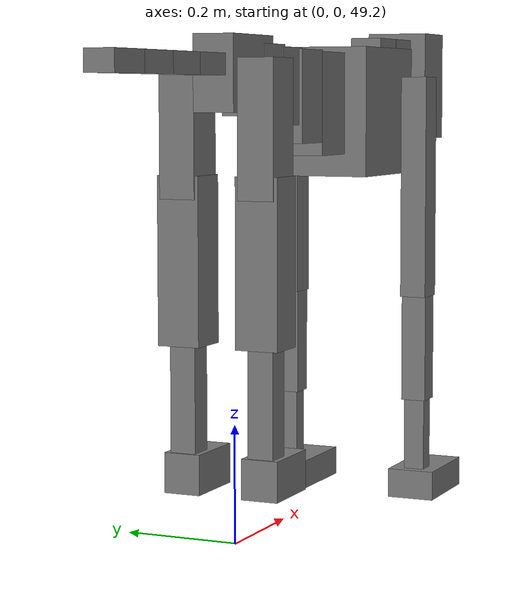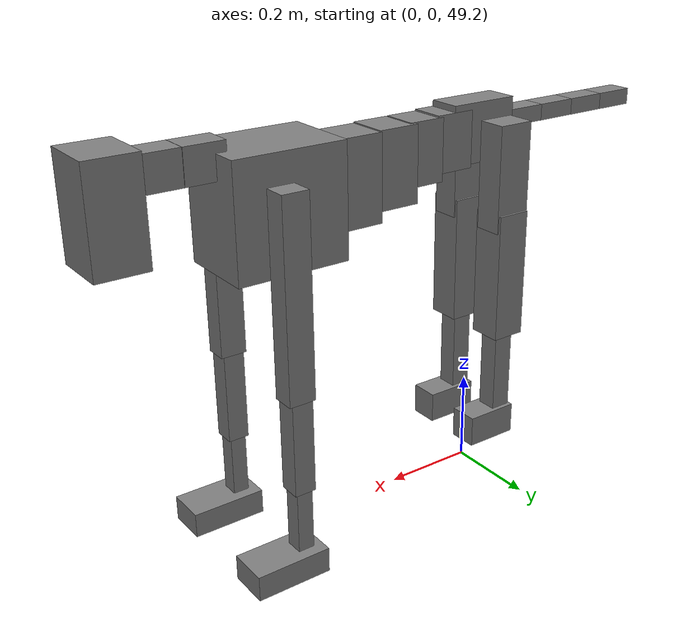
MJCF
<mujoco model="dog">

    <default>
        <joint armature="0.02" stiffness="1" damping="0.2" limited="true"/>
        <geom condim="3" friction="1 0.05 0.05" margin="0.01"/>
        <motor ctrllimited="true" ctrlrange="-1.0 1.0" forcelimited="true" gear="50"/>
    </default>

    <compiler inertiafromgeom="true" angle="radian"/>

    <option timestep="0.016" iterations="50" tolerance="1e-10" solver="Newton" jacobian="dense" cone="pyramidal"/>

    <size nconmax="20000" njmax="60000" nstack="5000000"/>
    <visual>
        <map force="0.1" zfar="30"/>
        <rgba haze="0.15 0.25 0.35 1"/>
        <quality shadowsize="2048"/>
        <global offwidth="800" offheight="800"/>
    </visual>

    <asset>
        <texture type="skybox" builtin="gradient" rgb1="0.3 0.5 0.7" rgb2="0 0 0" width="512" height="512"/>
        <texture name="texplane" type="2d" builtin="checker" rgb1=".2 .3 .4" rgb2=".1 0.15 0.2" width="512" height="512"
                 mark="cross" markrgb=".8 .8 .8"/>
        <texture name="texgeom" type="cube" builtin="flat" mark="cross" width="127" height="1278" rgb1="0.8 0.6 0.4"
                 rgb2="0.8 0.6 0.4" markrgb="1 1 1" random="0.01"/>

        <material name="matplane" reflectance="0.3" texture="texplane" texrepeat="1 1" texuniform="true"/>
        <material name="matgeom" texture="texgeom" texuniform="true" rgba="0.8 0.6 .4 1"/>
    </asset>

    <worldbody>
        <geom name="floor" pos="0 0 0" size="0 0 .25" type="plane" material="matplane" condim="3"/>

        <light directional="false" diffuse=".2 .2 .2" specular="0 0 0" pos="0 0 5" dir="0 0 -1" castshadow="false"/>
        <light mode="targetbodycom" target="torso" directional="false" diffuse=".8 .8 .8" specular="0.3 0.3 0.3"
               pos="0 0 4.0" dir="0 0 -1"/>

        <body name="root" pos="0 0 50">
            <freejoint name="root_1"/>
            <geom type="box" pos="0 0 -0.02" size="0.0774  0.0358  0.063" density="2030"/>

            <body name="spine1" pos="0.054 0 0">
                <joint name="spine1_y" axis="0 1 0" range="0 0.7" limited="true"/>
                <geom type="box" pos="0.02375 0 -0.03" size="0.04375  0.0375  0.05985" density="2030"/>

                <body name="spine2" pos="0.0612 0 0">
                    <joint name="spine2_y" axis="0 1 0" range="-0.15 0.15" limited="true"/>
                    <geom type="box" pos="0.03555  0  -0.04" size="0.04055  0.039  0.06615" density="2030"/>

                    <body name="spine3" pos="0.0730 0 0">
                        <joint name="spine3_y" axis="0 1 0" range="-0.15 0.15" limited="true"/>
                        <geom type="box" pos="0.03555  0  -0.057" size="0.04555  0.0445  0.081" density="2030"/>

                        <body name="spine4" pos="0.0780 0 0">
                            <joint name="spine4_y" axis="0 1 0" range="-0.15 0.15" limited="true"/>
                            <geom type="box" pos="0.05265  0  -0.07" size="0.05265  0.045  0.09135" density="2030"/>

                            <body name="torso" pos="0.1082 0 0">
                                <joint name="torso_y" axis="0 1 0" range="-0.15 0.15" limited="true"/>
                                <geom type="box" pos="0.11925  0  -0.085" size="0.11925  0.085  0.11745"
                                      density="2030"/>

                                <body name="neck1" pos="0.2160  0   0.0180">
                                    <joint name="neck1_y" axis="0 1 0" range="-1.2  -1" limited="true"/>
                                    <geom type="box" pos="0.0423  0  0" size="0.0423  0.03  0.036" density="2325"/>

                                    <body name="neck2" pos="0.0853  0  0">
                                        <joint name="neck2_y" axis="0 1 0" range="0.1  0" limited="true"/>
                                        <geom type="box" pos="0.0423  0  0" size="0.0423  0.03  0.036" density="2325"/>

                                        <body name="head" pos="0.0853  0  0">
                                            <joint name="head_y" axis="0 1 0" range="-0.3  -0.2" limited="true"/>
                                            <geom type="box" pos="0.0531  0  -0.055" size="0.0531  0.06  0.1044"
                                                  density="4030"/>

                                        </body>
                                    </body>
                                </body>

                                <body name="front_shoulder" pos="0.156  0   -0.0480">
                                    <joint name="front_shoulder_y" axis="0 1 0" range="-1 1.5" limited="true"/>
                                    <geom type="box" pos="0 0.13 -0.1783" size="0.0284  0.0243  0.2050" density="1158"/>
                                    <geom type="box" pos="0 -0.13 -0.1783" size="0.0284  0.0243  0.2050"
                                          density="1158"/>

                                    <body name="front_elbow" pos="0  0  -0.3567">
                                        <joint name="front_elbow_y" axis="0 1 0" range="-2 0" limited="true"/>
                                        <geom type="box" pos="0 0.13 -0.1112" size="0.0227  0.0232  0.1112"
                                              density="1081"/>
                                        <geom type="box" pos="0 -0.13 -0.1112" size="0.0227  0.0232  0.1112"
                                              density="1081"/>

                                        <body name="front_wrist" pos="0  0  -0.2224">
                                            <joint name="front_wrist_y" axis="0 1 0" range="-0.2 0" limited="true"/>
                                            <geom type="box" pos="0 0.13 -0.0734" size="0.0173  0.0192  0.0865"
                                                  density="1664"/>
                                            <geom type="box" pos="0 -0.13 -0.0734" size="0.0173  0.0192  0.0865"
                                                  density="1664"/>

                                            <body name="front_finger_end" pos="0  0  -0.1467">
                                                <joint name="front_finger_y" axis="0 1 0" range="-0.4 1"
                                                       limited="true"/>
                                                <geom type="box" pos="0.0438  0.13  -0.0119"
                                                      size="0.0803  0.0438  0.0269" density="1515"/>
                                                <geom type="box" pos="0.0438  -0.13  -0.0119"
                                                      size="0.0803  0.0438  0.0269" density="1515"/>

                                            </body>

                                        </body>
                                    </body>
                                </body>

                            </body>
                        </body>
                    </body>
                </body>
            </body>

            <body name="back_hip" pos="-0.03 0 -0.018">
                <joint name="back_hip_y" axis="0 1 0" range="-1.5 0.3" limited="true"/>
                <geom type="box" pos="0 0.07 -0.0913" size="0.0399  0.0313  0.1141" density="1154"/>
                <geom type="box" pos="0 -0.07 -0.0913" size="0.0399  0.0313  0.1141" density="1154"/>

                <body name="back_knee" pos="0  0  -0.1825">
                    <joint name="back_knee_y" axis="0 1 0" range="0 2.8" limited="true"/>
                    <geom type="box" pos="0 0.07 -0.1243" size="0.0373  0.0368  0.1398" density="1227"/>
                    <geom type="box" pos="0 -0.07 -0.1243" size="0.0373  0.0368  0.1398" density="1227"/>

                    <body name="back_ankle" pos="0  0  -0.2486">
                        <joint name="back_ankle_y" axis="0 1 0" range="-2.2 0" limited="true"/>
                        <geom type="box" pos="0 0.07 -0.1046" size="0.0224  0.0224  0.1158" density="1284"/>
                        <geom type="box" pos="0 -0.07 -0.1046" size="0.0224  0.0224  0.1158" density="1284"/>

                        <body name="back_toe_end" pos="0  0  -0.2092">
                            <joint name="back_toe_y" axis="0 1 0" range="-0.4 1" limited="true"/>
                            <geom type="box" pos="0.0319  0.07  -0.0189" size="0.0586  0.0319  0.0339" density="1515"/>
                            <geom type="box" pos="0.0319  -0.07  -0.0189" size="0.0586  0.0319  0.0339" density="1515"/>

                        </body>
                    </body>
                </body>
            </body>

            <body name="tail1" pos="-0.074 0 -0.006">
                <joint name="tail1_y" axis="0 1 0" range="-0.2 0.2" limited="true"/>
                <geom type="box" pos="-0.0536  0  0" size="0.045  0.025  0.0175" density="1587"/>

                <body name="tail2" pos="-0.09 0 0">
                    <joint name="tail2_y" axis="0 1 0" range="-0.2 0.2" limited="true"/>
                    <geom type="box" pos="-0.0536  0  0" size="0.045  0.025  0.0175" density="1587"/>

                    <body name="tail3" pos="-0.09 0 0">
                        <joint name="tail3_y" axis="0 1 0" range="-0.2 0.2" limited="true"/>
                        <geom type="box" pos="-0.0536  0  0" size="0.045  0.025  0.0175" density="1587"/>

                        <body name="tail4" pos="-0.09 0 0">
                            <joint name="tail4_y" axis="0 1 0" range="-0.2 0.2" limited="true"/>
                            <geom type="box" pos="-0.0536  0  0" size="0.045  0.025  0.0175" density="1587"/>

                        </body>
                    </body>
                </body>
            </body>
        </body>
    </worldbody>

    <actuator>
        <motor joint="spine1_y" forcerange="-150 150     "/>
        <motor joint="spine2_y" forcerange="-150 150     "/>
        <motor joint="spine3_y" forcerange="-150 150     "/>
        <motor joint="spine4_y" forcerange="-150 150     "/>
        <motor joint="torso_y" forcerange="-150 150     "/>
        <motor joint="neck1_y" forcerange="-100 100       "/>
        <motor joint="neck2_y" forcerange="-100 100       "/>
        <motor joint="head_y" forcerange="-150 150       "/>
        <motor joint="front_shoulder_y" forcerange="-119.88 141.94"/>
        <motor joint="front_elbow_y" forcerange="-126.68 141.93"/>
        <motor joint="front_wrist_y" forcerange="-90.16 63.57"/>
        <motor joint="front_finger_y" forcerange="-97.68 95.78"/>
        <motor joint="back_hip_y" forcerange="-228.18 389.44"/>
        <motor joint="back_knee_y" forcerange="-342.49 392.40"/>
        <motor joint="back_angle_y" forcerange="-93.98 165.05"/>
        <motor joint="back_toe_y" forcerange="-99.80 75.75"/>
        <motor joint="tail1_y" forcerange="-50 50     "/>
        <motor joint="tail2_y" forcerange="-50 50     "/>
        <motor joint="tail3_y" forcerange="-50 50     "/>
        <motor joint="tail4_y" forcerange="-50 50     "/>
    </actuator>
</mujoco>
